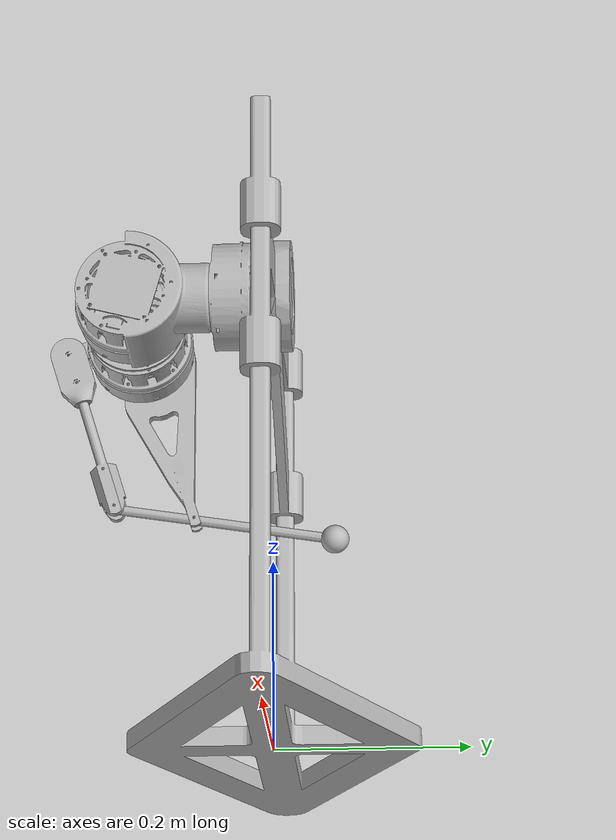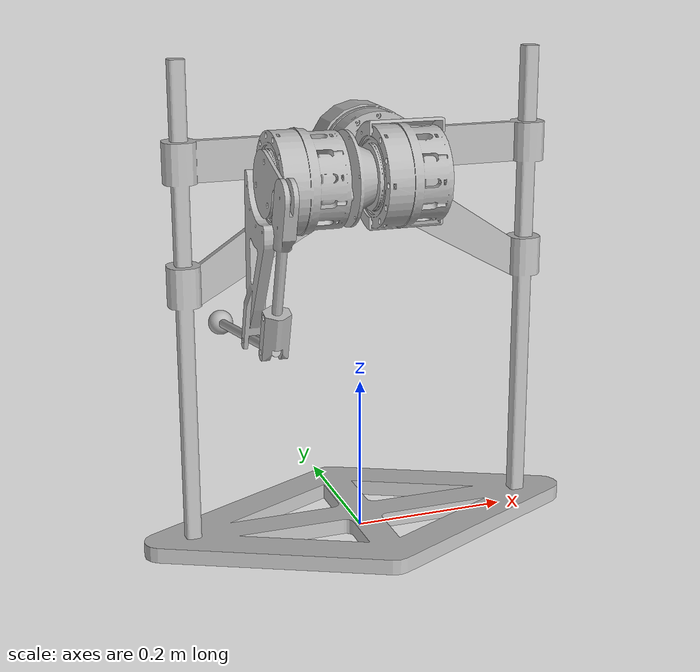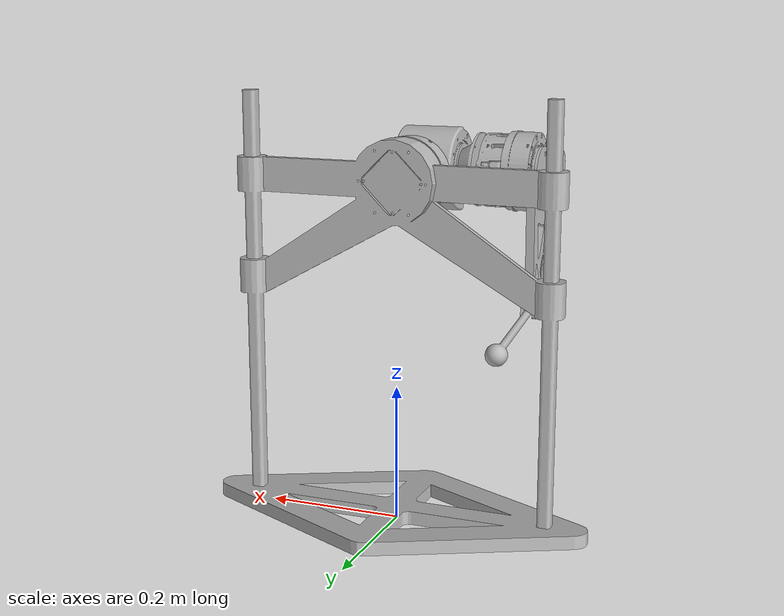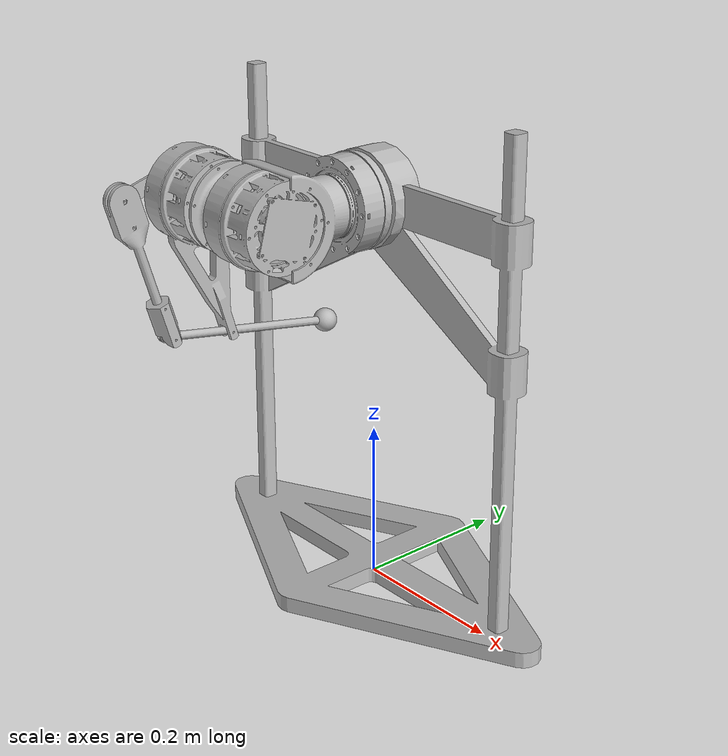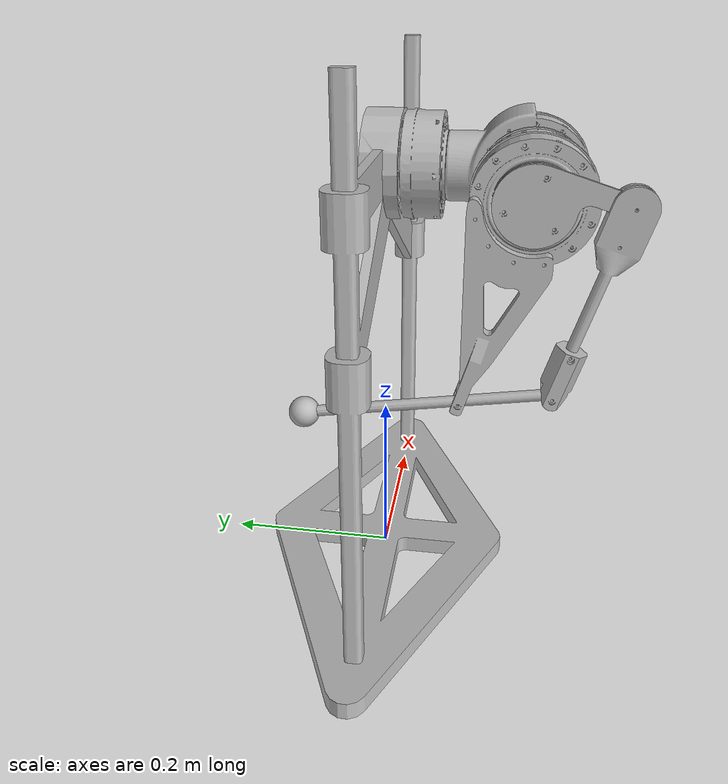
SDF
<sdf version='1.7'>
  <model name='titanleg'>
    <link name='base_link_stand'>
      <inertial>
        <pose>-0 -0.004387 0.22451 0 -0 0</pose>
        <mass>3.0381</mass>
        <inertia>
          <ixx>0.12285</ixx>
          <ixy>-2.9947e-09</ixy>
          <ixz>1.6602e-07</ixz>
          <iyy>0.18411</iyy>
          <iyz>-0.00015615</iyz>
          <izz>0.074368</izz>
        </inertia>
      </inertial>
      <collision name='base_link_stand_collision'>
        <pose>0 0 0 0 -0 0</pose>
        <geometry>
          <mesh>
            <scale>1 1 1</scale>
            <uri>model://titanleg_gazebo/meshes/base_link_stand.STL</uri>
          </mesh>
        </geometry>
      </collision>
      <visual name='base_link_stand_visual'>
        <pose>0 0 0 0 -0 0</pose>
        <geometry>
          <mesh>
            <scale>1 1 1</scale>
            <uri>model://titanleg_gazebo/meshes/base_link_stand.STL</uri>
          </mesh>
        </geometry>
      </visual>
    </link>
    <joint name='stand_c' type='revolute'>
      <pose relative_to='base_link_stand'>0 -0.067 0.5 0 0.004374 0</pose>
      <parent>base_link_stand</parent>
      <child>c_act</child>
      <axis>
        <xyz>0 1 0</xyz>
        <limit>
          <lower>0</lower>
          <upper>0</upper>
          <effort>0</effort>
          <velocity>0</velocity>
        </limit>
        <dynamics>
          <spring_reference>0</spring_reference>
          <spring_stiffness>0</spring_stiffness>
        </dynamics>
      </axis>
    </joint>
    <link name='c_act'>
      <pose relative_to='stand_c'>0 0 0 0 -0 0</pose>
      <inertial>
        <pose>-0.007001 -0.07012 -4e-06 0 -0 0</pose>
        <mass>0.63878</mass>
        <inertia>
          <ixx>0.0010297</ixx>
          <ixy>3.6029e-08</ixy>
          <ixz>-2.5269e-09</ixz>
          <iyy>0.00068339</iyy>
          <iyz>7.6666e-08</iyz>
          <izz>0.00061043</izz>
        </inertia>
      </inertial>
      <collision name='c_act_collision'>
        <pose>0 0 0 0 -0 0</pose>
        <geometry>
          <mesh>
            <scale>1 1 1</scale>
            <uri>model://titanleg_gazebo/meshes/c_act.STL</uri>
          </mesh>
        </geometry>
      </collision>
      <visual name='c_act_visual'>
        <pose>0 0 0 0 -0 0</pose>
        <geometry>
          <mesh>
            <scale>1 1 1</scale>
            <uri>model://titanleg_gazebo/meshes/c_act.STL</uri>
          </mesh>
        </geometry>
      </visual>
    </link>
    <joint name='c_knee' type='revolute'>
      <pose relative_to='c_act'>-0.046 -0.089 0 0 -0.004374 0</pose>
      <parent>c_act</parent>
      <child>knee_link</child>
      <axis>
        <xyz>-0.99999 0 0.004374</xyz>
        <limit>
          <lower>0</lower>
          <upper>0</upper>
          <effort>0</effort>
          <velocity>0</velocity>
        </limit>
        <dynamics>
          <spring_reference>0</spring_reference>
          <spring_stiffness>0</spring_stiffness>
        </dynamics>
      </axis>
    </joint>
    <link name='knee_link'>
      <pose relative_to='c_knee'>0 0 0 0 -0 0</pose>
      <inertial>
        <pose>-0.074218 0.004701 -0.012602 0 -0 0</pose>
        <mass>0.67416</mass>
        <inertia>
          <ixx>0.0011665</ixx>
          <ixy>2.3022e-07</ixy>
          <ixz>-3.2808e-06</ixz>
          <iyy>0.00071393</iyy>
          <iyz>2.7011e-05</iyz>
          <izz>0.00053531</izz>
        </inertia>
      </inertial>
      <collision name='knee_link_collision'>
        <pose>0 0 0 0 -0 0</pose>
        <geometry>
          <mesh>
            <scale>1 1 1</scale>
            <uri>model://titanleg_gazebo/meshes/knee_link.STL</uri>
          </mesh>
        </geometry>
      </collision>
      <visual name='knee_link_visual'>
        <pose>0 0 0 0 -0 0</pose>
        <geometry>
          <mesh>
            <scale>1 1 1</scale>
            <uri>model://titanleg_gazebo/meshes/knee_link.STL</uri>
          </mesh>
        </geometry>
      </visual>
    </link>
    <joint name='knee_part' type='revolute'>
      <pose relative_to='knee_link'>-0.118 0 0.000516 0 -0 0</pose>
      <parent>knee_link</parent>
      <child>part1</child>
      <axis>
        <xyz>-0.99999 0 0.004374</xyz>
        <limit>
          <lower>0</lower>
          <upper>0</upper>
          <effort>0</effort>
          <velocity>0</velocity>
        </limit>
        <dynamics>
          <spring_reference>0</spring_reference>
          <spring_stiffness>0</spring_stiffness>
        </dynamics>
      </axis>
    </joint>
    <link name='part1'>
      <pose relative_to='knee_part'>0 0 0 0 -0 0</pose>
      <inertial>
        <pose>-0.001984 -0.014008 0.002329 0 -0 0</pose>
        <mass>0.022708</mass>
        <inertia>
          <ixx>2.9612e-05</ixx>
          <ixy>6.3521e-09</ixy>
          <ixz>-2.9901e-08</ixz>
          <iyy>6.9674e-06</iyy>
          <iyz>1.8788e-06</iyz>
          <izz>2.2705e-05</izz>
        </inertia>
      </inertial>
      <collision name='part1_collision'>
        <pose>0 0 0 0 -0 0</pose>
        <geometry>
          <mesh>
            <scale>1 1 1</scale>
            <uri>model://titanleg_gazebo/meshes/part1.STL</uri>
          </mesh>
        </geometry>
      </collision>
      <visual name='part1_visual'>
        <pose>0 0 0 0 -0 0</pose>
        <geometry>
          <mesh>
            <scale>1 1 1</scale>
            <uri>model://titanleg_gazebo/meshes/part1.STL</uri>
          </mesh>
        </geometry>
      </visual>
    </link>
    <joint name='1_driver' type='revolute'>
      <pose relative_to='part1'>-0.001991 -0.084568 0.002143 0 -0 0</pose>
      <parent>part1</parent>
      <child>driver</child>
      <axis>
        <xyz>-0.99999 0 0.004374</xyz>
        <limit>
          <lower>0</lower>
          <upper>0</upper>
          <effort>0</effort>
          <velocity>0</velocity>
        </limit>
        <dynamics>
          <spring_reference>0</spring_reference>
          <spring_stiffness>0</spring_stiffness>
        </dynamics>
      </axis>
    </joint>
    <link name='driver'>
      <pose relative_to='1_driver'>0 0 0 0 -0 0</pose>
      <inertial>
        <pose>-0.000352 0.02643 -0.086849 0 -0 0</pose>
        <mass>0.079444</mass>
        <inertia>
          <ixx>4.255e-05</ixx>
          <ixy>4.4244e-08</ixy>
          <ixz>-1.5814e-07</ixz>
          <iyy>3.7064e-05</iyy>
          <iyz>8.5091e-06</iyz>
          <izz>1.1693e-05</izz>
        </inertia>
      </inertial>
      <collision name='driver_collision'>
        <pose>0 0 0 0 -0 0</pose>
        <geometry>
          <mesh>
            <scale>1 1 1</scale>
            <uri>model://titanleg_gazebo/meshes/driver.STL</uri>
          </mesh>
        </geometry>
      </collision>
      <visual name='driver_visual'>
        <pose>0 0 0 0 -0 0</pose>
        <geometry>
          <mesh>
            <scale>1 1 1</scale>
            <uri>model://titanleg_gazebo/meshes/driver.STL</uri>
          </mesh>
        </geometry>
      </visual>
    </link>
    <joint name='knee_rod' type='revolute'>
      <pose relative_to='knee_link'>-0.12085 0.059316 -0.19471 0 -0 0</pose>
      <parent>knee_link</parent>
      <child>mainrod</child>
      <axis>
        <xyz>-0.99999 0 0.004374</xyz>
        <limit>
          <lower>0</lower>
          <upper>0</upper>
          <effort>0</effort>
          <velocity>0</velocity>
        </limit>
        <dynamics>
          <spring_reference>0</spring_reference>
          <spring_stiffness>0</spring_stiffness>
        </dynamics>
      </axis>
    </joint>
    <link name='mainrod'>
      <pose relative_to='knee_rod'>0 0 0 0 -0 0</pose>
      <inertial>
        <pose>-0.000224 0.075734 -0.012223 0 -0 0</pose>
        <mass>0.038344</mass>
        <inertia>
          <ixx>0.00012409</ixx>
          <ixy>8.4106e-08</ixy>
          <ixz>-1.3582e-08</ixz>
          <iyy>4.9494e-06</iyy>
          <iyz>1.9229e-05</iyz>
          <izz>0.00012098</izz>
        </inertia>
      </inertial>
      <collision name='mainrod_collision'>
        <pose>0 0 0 0 -0 0</pose>
        <geometry>
          <mesh>
            <scale>1 1 1</scale>
            <uri>model://titanleg_gazebo/meshes/mainrod.STL</uri>
          </mesh>
        </geometry>
      </collision>
      <visual name='mainrod_visual'>
        <pose>0 0 0 0 -0 0</pose>
        <geometry>
          <mesh>
            <scale>1 1 1</scale>
            <uri>model://titanleg_gazebo/meshes/mainrod.STL</uri>
          </mesh>
        </geometry>
      </visual>
    </link>
    <static>0</static>
    <plugin name='gazebo_ros2_control' filename='libgazebo_ros2_control.so'>
      <robot_sim_type>gazebo_ros2_control/GazeboSystem</robot_sim_type>
      <parameters>$(find titanleg_gazebo)/config/titanleg.yaml</parameters>
    </plugin>
  </model>
</sdf>
